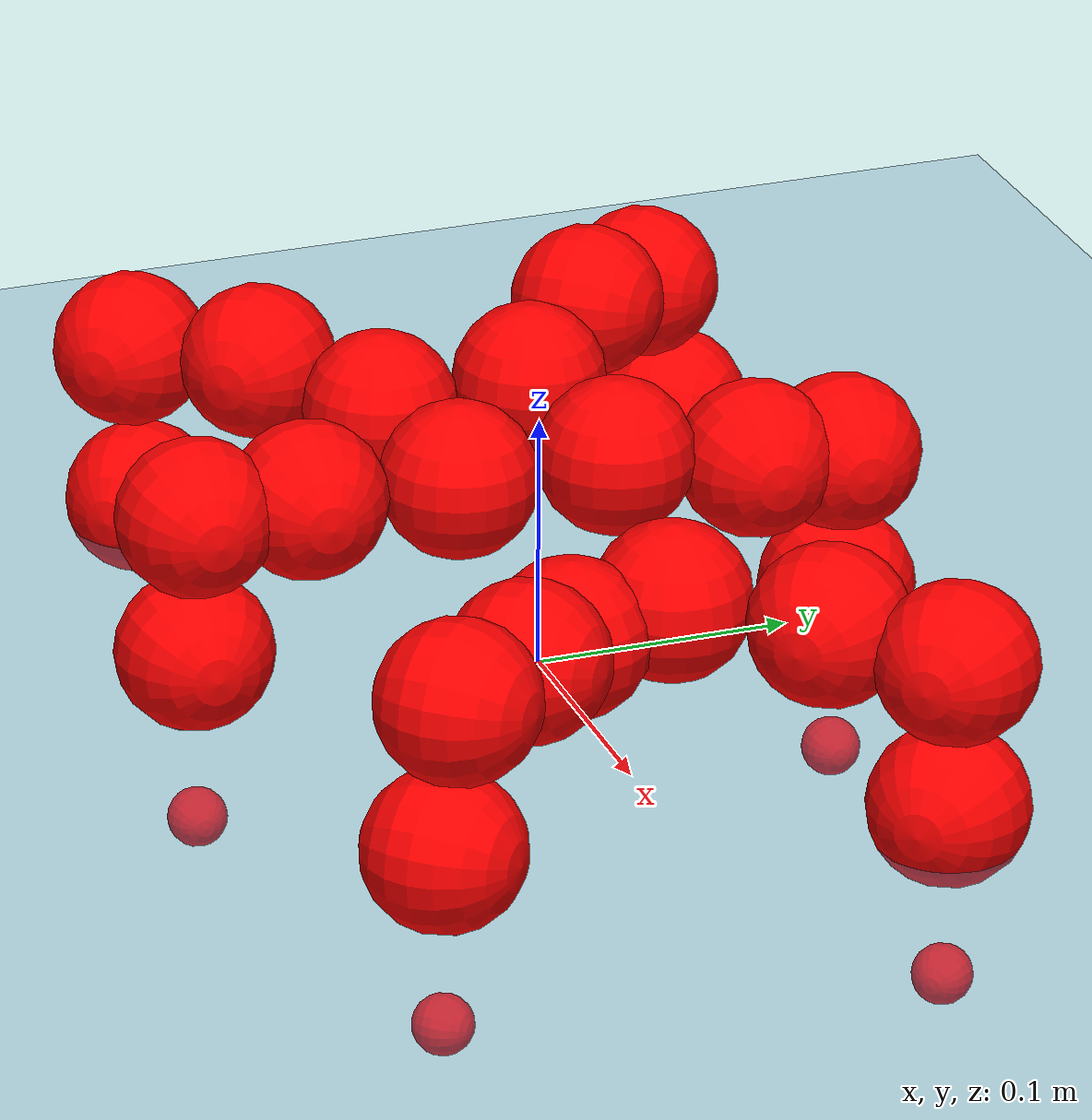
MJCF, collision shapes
<mujoco model="Golem">
  <compiler angle="radian" assetdir="assets" balanceinertia="true" inertiafromgeom="false"/>

  <option timestep="0.005" density="1.2" viscosity="2e-05"/>

  <size nkey="1"/>

  <visual>
    <quality shadowsize="8192"/>
    <map shadowclip="0.5"/>
  </visual>

  <default>
    <default class="/">
      <joint armature="0.01" damping="0.01" frictionloss="0.01"/>
      <geom contype="0" conaffinity="0" group="1" solref="-1000 -80"/>
      <site size="0.01 0.005 0.005" group="5"/>
      <general forcelimited="true" biastype="affine" gainprm="25" biasprm="0 -25 -0.5"/>
      <default class="visual">
        <geom type="mesh" group="2"/>
      </default>
      <default class="collision">
        <geom group="3"/>
      </default>
      <default class="foot">
        <geom size="0.01 0 0" condim="6" group="4" priority="1" solimp="0.015 1 0.01"/>
      </default>
      <default class="reward_collision_sphere">
        <geom group="5" rgba="1 0 0 1"/>
      </default>
    </default>
  </default>

  <asset>
    <texture type="skybox" colorspace="auto" name="//unnamed_texture_0" builtin="gradient" rgb1="0.95 0.95 0.95" rgb2="0.95 0.95 0.95" width="100" height="600"/>
    <texture type="2d" colorspace="auto" name="texplane" builtin="checker" rgb1="0.345 0.575 0.748" rgb2="0.345 0.575 0.748" markrgb="1 1 1" width="512" height="512"/>
    <material name="MatPlane" class="/" texture="texplane" texuniform="true" texrepeat="2 2" specular="0.9"/>
    <mesh name="body" class="/" file="body.stl" scale="0.001 0.001 0.001"/>
    <mesh name="coxa" class="/" file="coxa.stl" scale="0.001 0.001 0.001"/>
    <mesh name="femur" class="/" file="femur.stl" scale="0.001 0.001 0.001"/>
    <mesh name="tibia" class="/" file="tibia.stl" scale="0.001 0.001 0.001"/>
    <mesh name="tarsus" class="/" file="tarsus.stl" scale="0.001 0.001 0.001"/>
  </asset>

  <worldbody>
    <geom name="floor" class="/" size="100 100 0.125" type="plane" group="0" material="MatPlane"/>
    <light name="toplight_shadow" class="/" pos="0 0 5" dir="0.0990148 0.0990148 -0.990148" type="directional" ambient="0.04 0.04 0.04" diffuse="0.55 0.55 0.55" specular="0.12 0.12 0.12"/>
    <light name="toplight_fill" class="/" pos="0 0 5" dir="0.0990148 0.0990148 -0.990148" type="directional" castshadow="false" ambient="0.04 0.04 0.04" diffuse="0.3 0.3 0.3" specular="0.08 0.08 0.08"/>
    <body name="trunk" pos="0.000697245 -0.000608478 -0.000475318" quat="0.999985 -0.00372188 0.00375179 0.00137664">
      <inertial pos="-0.00108613 -0.00213082 -0.00520749" quat="0.999996 0.000494219 -0.00106877 0.00251788" mass="1.39591" diaginertia="0.00112231 0.000167356 0.0237955"/>
      <joint name="//unnamed_joint_0" type="free"/>
      <geom name="//unnamed_geom_1" class="/" pos="0 0 0.0765259" quat="1 0 0 0" type="mesh" rgba="0.9 0.9 0.9 1" mesh="body"/>
      <site name="imu" class="/" pos="0.0340528 0.0237488 0.126874" size="0.00760145"/>
      <camera name="track" class="/" pos="0 -0.872943 0" quat="0.707107 0.707107 0 0" mode="trackcom"/>
      <camera name="ego_camera" class="/" pos="0.0842719 0 0.119572" quat="-0.5 -0.5 0.5 0.5"/>
      <body name="coxa_RR" pos="-0.108469 -0.0446502 0.0709529" quat="0.383868 -0.00490107 -0.00178687 -0.923373">
        <inertial pos="0.00145626 -0.00241013 -0.0070272" quat="0.999608 0.0279824 0.000419083 0.000697137" mass="0.0796805" diaginertia="0.00103021 0.000146863 0.0216299"/>
        <joint name="coxa_joint_RR" class="/" pos="0 0 0" axis="-0.000270698 -0.00588089 -0.999983" range="-2.99371 3.3242" armature="0.0074675" damping="0.00806816" frictionloss="0.00573985"/>
        <geom name="//unnamed_geom_2" class="/" type="mesh" rgba="0.2 0.2 0.2 1" mesh="coxa"/>
        <geom name="//unnamed_geom_3" class="reward_collision_sphere" size="0.0304058" pos="-0.0194474 0 0"/>
        <body name="femur_RR" pos="0.0334952 -0.000889875 0.00804133" quat="0.499991 -0.499874 0.499953 0.500182">
          <inertial pos="0.00158247 -0.000865454 0.00039213" quat="0.999963 -0.00711669 0.00177064 -0.00439934" mass="0.0908299" diaginertia="0.00110567 0.000151762 0.0251335"/>
          <joint name="femur_joint_RR" class="/" pos="0 0 0" axis="0.0101044 -0.014374 -0.999846" range="-3.32302 3.17407" armature="0.010804" damping="0.0248834" frictionloss="0.0081278"/>
          <geom name="//unnamed_geom_4" class="/" type="mesh" rgba="0.9 0.9 0.9 1" mesh="femur"/>
          <geom name="//unnamed_geom_5" class="reward_collision_sphere" size="0.0304058"/>
          <body name="tibia_RR" pos="0.00722532 -0.0569232 -0.00204533" quat="-0.00194155 0.999995 -0.00190538 0.00179076">
            <inertial pos="-0.00766357 -0.00447003 -0.00189959" quat="0.999966 -0.00506131 -0.000735726 -0.00649358" mass="0.0793405" diaginertia="0.00116555 0.000156465 0.0268555"/>
            <joint name="tibia_joint_RR" class="/" pos="0 0 0" axis="0.0310972 0.0363778 0.998854" range="-3.33166 3.17382" armature="0.010174" damping="0.0350194" frictionloss="0.00733981"/>
            <geom name="//unnamed_geom_6" class="/" type="mesh" rgba="0.2 0.2 0.2 1" mesh="tibia"/>
            <geom name="//unnamed_geom_7" class="reward_collision_sphere" size="0.0304058"/>
            <body name="tarsus_RR" pos="0.0644951 -0.00324866 0.00366616" quat="0.999999 -0.000708509 -0.000482197 -0.000690236">
              <inertial pos="0.042051 0.00109857 0.00124346" quat="0.506318 0.502644 0.494493 0.496455" mass="0.0810922" diaginertia="0.00103163 0.000158571 0.0216264"/>
              <joint name="tarsus_joint_RR" class="/" pos="0 0 0" axis="-0.0064171 -0.0389902 0.999219" range="-3.0697 3.12355" armature="0.00761846" damping="0" frictionloss="0.00772778"/>
              <geom name="//unnamed_geom_8" class="/" type="mesh" rgba="0.9 0.9 0.9 1" mesh="tarsus"/>
              <geom name="foot_1" class="foot" size="0.00710295" pos="0.0726034 0 0" quat="0 -0.707107 0 0.707107"/>
              <geom name="//unnamed_geom_10" class="reward_collision_sphere" size="0.0304058"/>
              <geom name="//unnamed_geom_11" class="reward_collision_sphere" size="0.0114022" pos="0.0696863 0 0"/>
              <site name="foot_1" class="foot" pos="0.0726034 0 0" quat="0 -0.707107 0 0.707107" size="0.00760145"/>
            </body>
          </body>
        </body>
      </body>
      <body name="coxa_RM" pos="-0.00011697 -0.0514926 0.081994" quat="0.710127 0.00102578 0.00138066 -0.704071">
        <inertial pos="-0.00336175 0.00847482 -0.0017666" quat="0.999966 0.0065811 -0.00424424 -0.00265708" mass="0.0983514" diaginertia="0.00130035 0.000156576 0.0241613"/>
        <joint name="coxa_joint_RM" class="/" pos="0 0 0" axis="0.000840312 -0.0418262 -0.999125" stiffness="0.00584382" range="-3.15344 2.98423" armature="0.00397573" damping="0.0326783" frictionloss="0.0100002"/>
        <geom name="//unnamed_geom_12" class="/" type="mesh" rgba="0.2 0.2 0.2 1" mesh="coxa"/>
        <geom name="//unnamed_geom_13" class="reward_collision_sphere" size="0.0304058" pos="-0.0194474 0 0"/>
        <body name="femur_RM" pos="0.0392854 -0.00168095 5.71928e-05" quat="0.500596 -0.499523 0.49989 0.499989">
          <inertial pos="-0.00542341 -0.00133011 0.000866861" quat="0.999998 0.0017771 -0.000994873 -0.000864977" mass="0.0773384" diaginertia="0.00117996 0.000150381 0.0232339"/>
          <joint name="femur_joint_RM" class="/" pos="0 0 0" axis="0.00669881 0.00616729 -0.999959" range="-3.0635 3.10019" armature="0.0072891" damping="0" frictionloss="0.00537433"/>
          <geom name="//unnamed_geom_14" class="/" type="mesh" rgba="0.9 0.9 0.9 1" mesh="femur"/>
          <geom name="//unnamed_geom_15" class="reward_collision_sphere" size="0.0304058"/>
          <body name="tibia_RM" pos="0.000706378 -0.0432848 -0.000618682" quat="8.69668e-05 1 5.90467e-05 0.000576116">
            <inertial pos="-0.00242031 -0.000800405 0.00866178" quat="0.999177 -0.0342383 0.019396 -0.0098576" mass="0.0878579" diaginertia="0.00103929 0.000165866 0.0225694"/>
            <joint name="tibia_joint_RM" class="/" pos="0 0 0" axis="0.00301944 -0.00014963 0.999995" range="-3.13454 3.19661" armature="0.00456137" damping="0" frictionloss="0.00362378"/>
            <geom name="//unnamed_geom_16" class="/" type="mesh" rgba="0.2 0.2 0.2 1" mesh="tibia"/>
            <geom name="//unnamed_geom_17" class="reward_collision_sphere" size="0.0304058"/>
            <body name="tarsus_RM" pos="0.0566437 8.10812e-06 0.0041283" quat="1 -0.000201623 4.89234e-05 -0.000198005">
              <inertial pos="0.0329761 0.00150382 -0.000403144" quat="0.490298 0.484235 0.523173 0.501412" mass="0.0878178" diaginertia="0.00109068 0.000152449 0.026116"/>
              <joint name="tarsus_joint_RM" class="/" pos="0 0 0" axis="-0.000663191 0.000328704 1" range="-3.33259 3.06264" armature="0.00351478" damping="0" frictionloss="0.00830632"/>
              <geom name="//unnamed_geom_18" class="/" type="mesh" rgba="0.9 0.9 0.9 1" mesh="tarsus"/>
              <geom name="foot_2" class="foot" size="0.00495537" pos="0.0726034 0 0" quat="0 -0.707107 0 0.707107"/>
              <geom name="//unnamed_geom_20" class="reward_collision_sphere" size="0.0304058"/>
              <geom name="//unnamed_geom_21" class="reward_collision_sphere" size="0.0114022" pos="0.0696863 0 0"/>
              <site name="foot_2" class="foot" pos="0.0726034 0 0" quat="0 -0.707107 0 0.707107" size="0.00760145"/>
            </body>
          </body>
        </body>
      </body>
      <body name="coxa_RF" pos="0.123848 -0.0418743 0.0671506" quat="0.923858 9.95247e-05 0.000417299 -0.382736">
        <inertial pos="0.00672092 0.0111339 -0.00546215" quat="0.999501 0.00513623 -0.0152072 0.0272219" mass="0.0902531" diaginertia="0.00106833 0.000160423 0.0248379"/>
        <joint name="coxa_joint_RF" class="/" pos="0 0 0" axis="0.000313021 -0.0047644 -0.999989" range="-3.08013 2.95261" armature="0.00944123" damping="0.00114494" frictionloss="0.00718489"/>
        <geom name="//unnamed_geom_22" class="/" type="mesh" rgba="0.2 0.2 0.2 1" mesh="coxa"/>
        <geom name="//unnamed_geom_23" class="reward_collision_sphere" size="0.0304058" pos="-0.0194474 0 0"/>
        <body name="femur_RF" pos="0.0275491 0.0051753 0.0126035" quat="0.50258 -0.501329 0.496686 0.499386">
          <inertial pos="-0.00065161 0.00645075 -0.00914616" quat="0.998825 0.0123194 -0.0466359 -0.00467282" mass="0.0867461" diaginertia="0.00119673 0.000174393 0.0239952"/>
          <joint name="femur_joint_RF" class="/" pos="0 0 0" axis="0.00888724 0.00389494 -0.999953" stiffness="0.00085799" range="-3.25986 3.13584" armature="0.00730862" damping="0.0255335" frictionloss="0.0110433"/>
          <geom name="//unnamed_geom_24" class="/" type="mesh" rgba="0.9 0.9 0.9 1" mesh="femur"/>
          <geom name="//unnamed_geom_25" class="reward_collision_sphere" size="0.0304058"/>
          <body name="tibia_RF" pos="-0.00534154 -0.0496928 -0.00370768" quat="-0.00255533 0.999995 0.00172693 -0.000970727">
            <inertial pos="-0.00213484 -0.00430332 0.0023283" quat="0.999571 0.0162248 -0.0193679 -0.0147956" mass="0.086064" diaginertia="0.00111877 0.000161127 0.024782"/>
            <joint name="tibia_joint_RF" class="/" pos="0 0 0" axis="0.0341566 -0.0251533 0.9991" range="-3.13672 3.10366" armature="0.00847128" damping="0.0187861" frictionloss="0.0074787"/>
            <geom name="//unnamed_geom_26" class="/" type="mesh" rgba="0.2 0.2 0.2 1" mesh="tibia"/>
            <geom name="//unnamed_geom_27" class="reward_collision_sphere" size="0.0304058"/>
            <body name="tarsus_RF" pos="0.0583126 0.00209812 0.0042461" quat="0.99999 -0.00372991 0.000906126 0.00231996">
              <inertial pos="0.0479368 0.00101892 -0.0107927" quat="0.488619 0.528436 0.490178 0.491663" mass="0.103785" diaginertia="0.00113386 0.00017537 0.0279518"/>
              <joint name="tarsus_joint_RF" class="/" pos="0 0 0" axis="0.0465522 -0.0130356 0.998831" range="-3.33434 3.12651" armature="0.00780147" damping="0" frictionloss="0.00538725"/>
              <geom name="//unnamed_geom_28" class="/" type="mesh" rgba="0.9 0.9 0.9 1" mesh="tarsus"/>
              <geom name="foot_3" class="foot" size="0.00722909" pos="0.0726034 0 0" quat="0 -0.707107 0 0.707107"/>
              <geom name="//unnamed_geom_30" class="reward_collision_sphere" size="0.0304058"/>
              <geom name="//unnamed_geom_31" class="reward_collision_sphere" size="0.0114022" pos="0.0696863 0 0"/>
              <site name="foot_3" class="foot" pos="0.0726034 0 0" quat="0 -0.707107 0 0.707107" size="0.00760145"/>
            </body>
          </body>
        </body>
      </body>
      <body name="coxa_LR" pos="-0.118206 0.0472459 0.069433" quat="0.379115 0.000881822 0.00247616 0.925346">
        <inertial pos="-0.00866746 0.00222912 0.00515466" quat="0.999385 0.0296729 0.017565 -0.0063095" mass="0.085978" diaginertia="0.00111684 0.000155617 0.0240087"/>
        <joint name="coxa_joint_LR" class="/" pos="0 0 0" axis="-0.00686615 -0.0473808 -0.998853" stiffness="0.00129107" range="-3.13921 3.16897" armature="0.00863249" damping="0.0456779" frictionloss="0.00693386"/>
        <geom name="//unnamed_geom_32" class="/" type="mesh" rgba="0.2 0.2 0.2 1" mesh="coxa"/>
        <geom name="//unnamed_geom_33" class="reward_collision_sphere" size="0.0304058" pos="-0.0194474 0 0"/>
        <body name="femur_LR" pos="0.04328 0.00379513 0.00778632" quat="0.496374 -0.501554 0.500184 0.501868">
          <inertial pos="-0.00204345 -0.000997768 0.00292594" quat="0.99996 -0.0075943 -0.00447287 -0.00162636" mass="0.0853669" diaginertia="0.00112658 0.000154887 0.022929"/>
          <joint name="femur_joint_LR" class="/" pos="0 0 0" axis="0.00057273 0.00247196 0.999997" stiffness="0.00135918" range="-3.212 2.91823" armature="0.00662964" damping="0" frictionloss="0.00360333"/>
          <geom name="//unnamed_geom_34" class="/" type="mesh" rgba="0.9 0.9 0.9 1" mesh="femur"/>
          <geom name="//unnamed_geom_35" class="reward_collision_sphere" size="0.0304058"/>
          <body name="tibia_LR" pos="0.00739098 -0.0433698 -0.00510969" quat="-0.000271337 1 -0.00023729 -0.000543103">
            <inertial pos="-0.000855824 -0.000183842 0.000662989" quat="0.999992 -0.00276392 0.00120169 0.00272484" mass="0.0920562" diaginertia="0.00114643 0.000145471 0.0243383"/>
            <joint name="tibia_joint_LR" class="/" pos="0 0 0" axis="0.00586378 0.00871715 -0.999945" stiffness="0.00197066" range="-3.16141 3.30905" armature="0.0115103" damping="0" frictionloss="0.00914954"/>
            <geom name="//unnamed_geom_36" class="/" type="mesh" rgba="0.2 0.2 0.2 1" mesh="tibia"/>
            <geom name="//unnamed_geom_37" class="reward_collision_sphere" size="0.0304058"/>
            <body name="tarsus_LR" pos="0.053009 0.00586517 0.0110177" quat="1 0.000511876 3.4283e-05 -0.000101762">
              <inertial pos="0.0414249 0.0030271 -0.000819719" quat="0.495703 0.503159 0.506089 0.494959" mass="0.0889039" diaginertia="0.00115205 0.000163088 0.0249973"/>
              <joint name="tarsus_joint_LR" class="/" pos="0 0 0" axis="0.00287099 0.00166914 -0.999994" stiffness="0.019721" range="-3.32454 3.12904" armature="0.00717164" damping="0.0608067" frictionloss="0.00792821"/>
              <geom name="//unnamed_geom_38" class="/" type="mesh" rgba="0.9 0.9 0.9 1" mesh="tarsus"/>
              <geom name="foot_4" class="foot" size="0.00990493" pos="0.0726034 0 0" quat="0.707107 0 -0.707107 0"/>
              <geom name="//unnamed_geom_40" class="reward_collision_sphere" size="0.0304058"/>
              <geom name="//unnamed_geom_41" class="reward_collision_sphere" size="0.0114022" pos="0.0696863 0 0"/>
              <site name="foot_4" class="foot" pos="0.0726034 0 0" quat="0.707107 0 -0.707107 0" size="0.00760145"/>
            </body>
          </body>
        </body>
      </body>
      <body name="coxa_LM" pos="0.00747518 0.0467109 0.086309" quat="0.710677 0.000956567 0.00198038 0.703515">
        <inertial pos="0.00272256 0.000526697 -0.00499197" quat="0.999978 0.000684979 -0.00377327 0.0054147" mass="0.0773876" diaginertia="0.000857442 0.000137283 0.0202058"/>
        <joint name="coxa_joint_LM" class="/" pos="0 0 0" axis="0.000496199 -9.85313e-05 -1" range="-2.98736 3.13647" armature="0.0101406" damping="0" frictionloss="0.0048746"/>
        <geom name="//unnamed_geom_42" class="/" type="mesh" rgba="0.2 0.2 0.2 1" mesh="coxa"/>
        <geom name="//unnamed_geom_43" class="reward_collision_sphere" size="0.0304058" pos="-0.0194474 0 0"/>
        <body name="femur_LM" pos="0.0345407 -0.00572131 -0.0061407" quat="0.500009 -0.500023 0.49994 0.500029">
          <inertial pos="-0.000929154 0.00628114 -0.000700546" quat="0.999705 -0.0162445 -0.00927039 0.015504" mass="0.106895" diaginertia="0.00130936 0.000182715 0.0281934"/>
          <joint name="femur_joint_LM" class="/" pos="0 0 0" axis="-0.0105435 0.0119732 0.999873" range="-3.14847 3.10816" armature="0.00921338" damping="0" frictionloss="0.00557632"/>
          <geom name="//unnamed_geom_44" class="/" type="mesh" rgba="0.9 0.9 0.9 1" mesh="femur"/>
          <geom name="//unnamed_geom_45" class="reward_collision_sphere" size="0.0304058"/>
          <body name="tibia_LM" pos="0.00425718 -0.0366651 0.00397822" quat="1.89395e-05 1 0.000357545 -0.000198834">
            <inertial pos="0.00983528 -0.0111863 0.00123974" quat="0.999999 -0.000968365 0.0010735 -0.000368947" mass="0.0801195" diaginertia="0.00125573 0.000162399 0.0249445"/>
            <joint name="tibia_joint_LM" class="/" pos="0 0 0" axis="-0.00178756 -0.00497943 -0.999986" range="-3.26964 3.15016" armature="0.00704924" damping="0" frictionloss="0.0093044"/>
            <geom name="//unnamed_geom_46" class="/" type="mesh" rgba="0.2 0.2 0.2 1" mesh="tibia"/>
            <geom name="//unnamed_geom_47" class="reward_collision_sphere" size="0.0304058"/>
            <body name="tarsus_LM" pos="0.0530714 -0.0023544 0.00441725" quat="0.999999 0.000753883 -0.000385555 0.000558062">
              <inertial pos="0.0413866 0.00064248 -0.000352998" quat="0.499434 0.496688 0.505413 0.498423" mass="0.0943768" diaginertia="0.00117502 0.000159558 0.0223184"/>
              <joint name="tarsus_joint_LM" class="/" pos="0 0 0" axis="-0.029596 0.0225542 -0.999307" stiffness="0.000417534" range="-3.16141 3.26593" armature="0.00739535" damping="0" frictionloss="0.010447"/>
              <geom name="//unnamed_geom_48" class="/" type="mesh" rgba="0.9 0.9 0.9 1" mesh="tarsus"/>
              <geom name="foot_5" class="foot" size="0.00789984" pos="0.0726034 0 0" quat="0.707107 0 -0.707107 0"/>
              <geom name="//unnamed_geom_50" class="reward_collision_sphere" size="0.0304058"/>
              <geom name="//unnamed_geom_51" class="reward_collision_sphere" size="0.0114022" pos="0.0696863 0 0"/>
              <site name="foot_5" class="foot" pos="0.0726034 0 0" quat="0.707107 0 -0.707107 0" size="0.00760145"/>
            </body>
          </body>
        </body>
      </body>
      <body name="coxa_LF" pos="0.118813 0.0264023 0.0733457" quat="0.924324 2.78648e-05 0.00146303 0.381607">
        <inertial pos="-0.00135052 0.00630624 -0.000182593" quat="0.999997 -0.00217484 -0.000888036 -0.000941281" mass="0.0976813" diaginertia="0.00124664 0.000189509 0.0263465"/>
        <joint name="coxa_joint_LF" class="/" pos="0 0 0" axis="-0.0166564 0.00221738 -0.999859" stiffness="0.0145947" range="-3.02137 3.17886" armature="0.00785426" damping="0.0222095" frictionloss="0.00609"/>
        <geom name="//unnamed_geom_52" class="/" type="mesh" rgba="0.2 0.2 0.2 1" mesh="coxa"/>
        <geom name="//unnamed_geom_53" class="reward_collision_sphere" size="0.0304058" pos="-0.0194474 0 0"/>
        <body name="femur_LF" pos="0.0447891 -0.00548262 0.00681013" quat="0.499642 -0.500761 0.498076 0.501514">
          <inertial pos="-0.00257982 -0.000709556 -0.00142116" quat="0.998571 -0.0319354 0.0371236 0.0214" mass="0.0860753" diaginertia="0.00114174 0.000173109 0.0254826"/>
          <joint name="femur_joint_LF" class="/" pos="0 0 0" axis="0.0134585 -0.0171676 0.999762" range="-3.1012 3.20511" armature="0.00701769" damping="0" frictionloss="0.0118232"/>
          <geom name="//unnamed_geom_54" class="/" type="mesh" rgba="0.9 0.9 0.9 1" mesh="femur"/>
          <geom name="//unnamed_geom_55" class="reward_collision_sphere" size="0.0304058"/>
          <body name="tibia_LF" pos="0.00475484 -0.0488539 0.000739552" quat="-2.55152e-05 1 0.000442669 0.000544294">
            <inertial pos="-0.000951018 7.41256e-05 0.00170849" quat="0.999819 -0.0113644 -0.0147258 0.00393004" mass="0.0813074" diaginertia="0.00115565 0.000164973 0.025536"/>
            <joint name="tibia_joint_LF" class="/" pos="0 0 0" axis="-0.00625777 -0.0198303 -0.999784" range="-2.93228 3.17641" armature="0.00586395" damping="0" frictionloss="0.0097712"/>
            <geom name="//unnamed_geom_56" class="/" type="mesh" rgba="0.2 0.2 0.2 1" mesh="tibia"/>
            <geom name="//unnamed_geom_57" class="reward_collision_sphere" size="0.0304058"/>
            <body name="tarsus_LF" pos="0.0593474 -0.0023279 -0.0038779" quat="1 -3.91533e-06 -0.000188749 0.000982005">
              <inertial pos="0.0418559 0.00106751 -0.0101066" quat="0.499571 0.503048 0.497785 0.499581" mass="0.090205" diaginertia="0.00115824 0.000163252 0.0256055"/>
              <joint name="tarsus_joint_LF" class="/" pos="0 0 0" axis="0.00492335 0.033704 -0.99942" range="-3.1313 3.04296" armature="0.00775732" damping="0.0579727" frictionloss="0.00800112"/>
              <geom name="//unnamed_geom_58" class="/" type="mesh" rgba="0.9 0.9 0.9 1" mesh="tarsus"/>
              <geom name="foot_6" class="foot" size="0.00710756" pos="0.0726034 0 0" quat="0.707107 0 -0.707107 0"/>
              <geom name="//unnamed_geom_60" class="reward_collision_sphere" size="0.0304058"/>
              <geom name="//unnamed_geom_61" class="reward_collision_sphere" size="0.0114022" pos="0.0696863 0 0"/>
              <site name="foot_6" class="foot" pos="0.0726034 0 0" quat="0.707107 0 -0.707107 0" size="0.00760145"/>
            </body>
          </body>
        </body>
      </body>
    </body>
  </worldbody>

  <contact>
    <pair class="/" geom1="floor" geom2="foot_1" name="//unnamed_contact_0"/>
    <pair class="/" geom1="floor" geom2="foot_2" name="//unnamed_contact_1"/>
    <pair class="/" geom1="floor" geom2="foot_3" name="//unnamed_contact_2"/>
    <pair class="/" geom1="floor" geom2="foot_4" name="//unnamed_contact_3"/>
    <pair class="/" geom1="floor" geom2="foot_5" name="//unnamed_contact_4"/>
    <pair class="/" geom1="floor" geom2="foot_6" name="//unnamed_contact_5"/>
  </contact>

  <actuator>
    <general name="coxa_joint_RR" class="/" joint="coxa_joint_RR" forcerange="-4.2295 4.2295" gainprm="23.916" biasprm="0 -23.916 -0.474084"/>
    <general name="femur_joint_RR" class="/" joint="femur_joint_RR" forcerange="-4.94469 4.94469" gainprm="23.916" biasprm="0 -23.916 -0.474084"/>
    <general name="tibia_joint_RR" class="/" joint="tibia_joint_RR" forcerange="-5.65099 5.65099" gainprm="23.916" biasprm="0 -23.916 -0.474084"/>
    <general name="tarsus_joint_RR" class="/" joint="tarsus_joint_RR" forcerange="-5.60015 5.60015" gainprm="23.916" biasprm="0 -23.916 -0.474084"/>
    <general name="coxa_joint_RM" class="/" joint="coxa_joint_RM" forcerange="-4.19468 4.19468" gainprm="23.916" biasprm="0 -23.916 -0.474084"/>
    <general name="femur_joint_RM" class="/" joint="femur_joint_RM" forcerange="-3.93387 3.93387" gainprm="23.916" biasprm="0 -23.916 -0.474084"/>
    <general name="tibia_joint_RM" class="/" joint="tibia_joint_RM" forcerange="-6.20183 6.20183" gainprm="23.916" biasprm="0 -23.916 -0.474084"/>
    <general name="tarsus_joint_RM" class="/" joint="tarsus_joint_RM" forcerange="-3.38557 3.38557" gainprm="23.916" biasprm="0 -23.916 -0.474084"/>
    <general name="coxa_joint_RF" class="/" joint="coxa_joint_RF" forcerange="-3.68514 3.68514" gainprm="23.916" biasprm="0 -23.916 -0.474084"/>
    <general name="femur_joint_RF" class="/" joint="femur_joint_RF" forcerange="-7.42822 7.42822" gainprm="23.916" biasprm="0 -23.916 -0.474084"/>
    <general name="tibia_joint_RF" class="/" joint="tibia_joint_RF" forcerange="-6.11488 6.11488" gainprm="23.916" biasprm="0 -23.916 -0.474084"/>
    <general name="tarsus_joint_RF" class="/" joint="tarsus_joint_RF" forcerange="-5.93354 5.93354" gainprm="23.916" biasprm="0 -23.916 -0.474084"/>
    <general name="coxa_joint_LR" class="/" joint="coxa_joint_LR" forcerange="-4.78395 4.78395" gainprm="23.916" biasprm="0 -23.916 -0.474084"/>
    <general name="femur_joint_LR" class="/" joint="femur_joint_LR" forcerange="-6.79087 6.79087" gainprm="23.916" biasprm="0 -23.916 -0.474084"/>
    <general name="tibia_joint_LR" class="/" joint="tibia_joint_LR" forcerange="-6.15748 6.15748" gainprm="23.916" biasprm="0 -23.916 -0.474084"/>
    <general name="tarsus_joint_LR" class="/" joint="tarsus_joint_LR" forcerange="-5.32015 5.32015" gainprm="23.916" biasprm="0 -23.916 -0.474084"/>
    <general name="coxa_joint_LM" class="/" joint="coxa_joint_LM" forcerange="-5.67093 5.67093" gainprm="23.916" biasprm="0 -23.916 -0.474084"/>
    <general name="femur_joint_LM" class="/" joint="femur_joint_LM" forcerange="-5.63799 5.63799" gainprm="23.916" biasprm="0 -23.916 -0.474084"/>
    <general name="tibia_joint_LM" class="/" joint="tibia_joint_LM" forcerange="-7.69378 7.69378" gainprm="23.916" biasprm="0 -23.916 -0.474084"/>
    <general name="tarsus_joint_LM" class="/" joint="tarsus_joint_LM" forcerange="-5.60777 5.60777" gainprm="23.916" biasprm="0 -23.916 -0.474084"/>
    <general name="coxa_joint_LF" class="/" joint="coxa_joint_LF" forcerange="-3.91131 3.91131" gainprm="23.916" biasprm="0 -23.916 -0.474084"/>
    <general name="femur_joint_LF" class="/" joint="femur_joint_LF" forcerange="-3.83597 3.83597" gainprm="23.916" biasprm="0 -23.916 -0.474084"/>
    <general name="tibia_joint_LF" class="/" joint="tibia_joint_LF" forcerange="-5.1845 5.1845" gainprm="23.916" biasprm="0 -23.916 -0.474084"/>
    <general name="tarsus_joint_LF" class="/" joint="tarsus_joint_LF" forcerange="-5.74001 5.74001" gainprm="23.916" biasprm="0 -23.916 -0.474084"/>
  </actuator>

  <sensor>
    <gyro site="imu" name="imu_angular_velocity"/>
    <velocimeter site="imu" name="imu_linear_velocity"/>
    <framelinvel objtype="site" objname="foot_1" name="foot_1_global_linear_velocity"/>
    <framelinvel objtype="site" objname="foot_2" name="foot_2_global_linear_velocity"/>
    <framelinvel objtype="site" objname="foot_3" name="foot_3_global_linear_velocity"/>
    <framelinvel objtype="site" objname="foot_4" name="foot_4_global_linear_velocity"/>
    <framelinvel objtype="site" objname="foot_5" name="foot_5_global_linear_velocity"/>
    <framelinvel objtype="site" objname="foot_6" name="foot_6_global_linear_velocity"/>
  </sensor>

  <keyframe>
    <key name="home" qpos="0 0 0.1457 1 0 0 0 0 0 0 0 0 0 0 0 0 0 0 0 0 0 0 0 0 0 0 0 0 0 0 0"/>
  </keyframe>
</mujoco>
